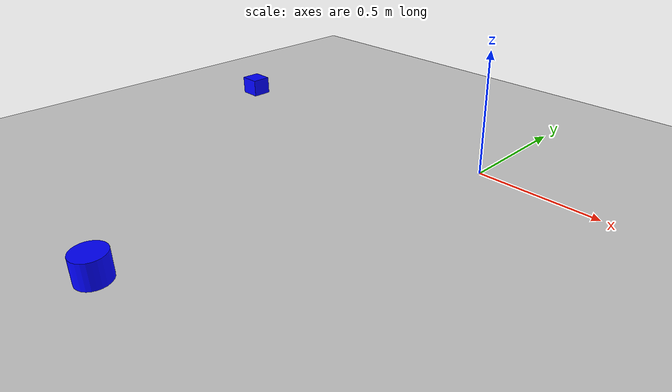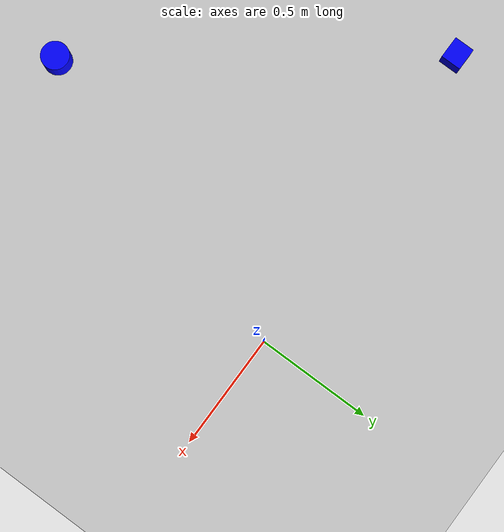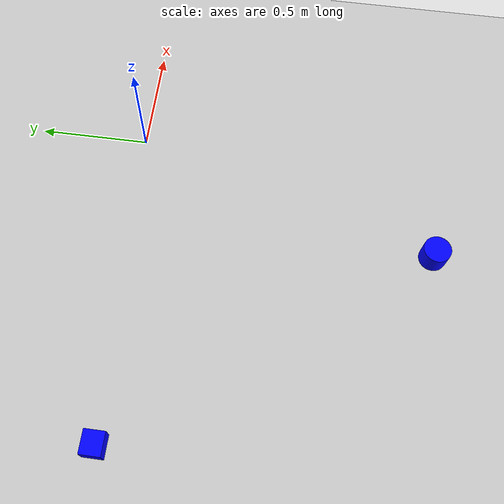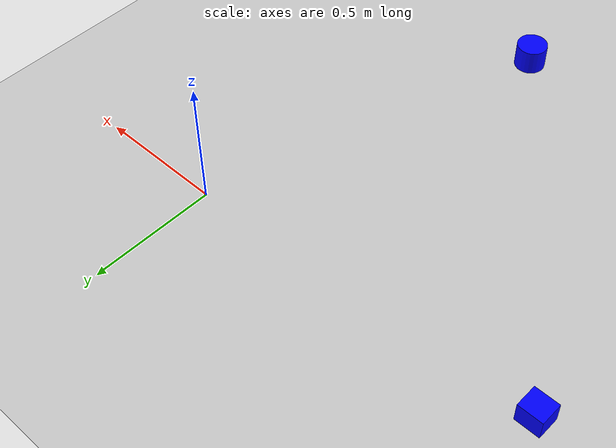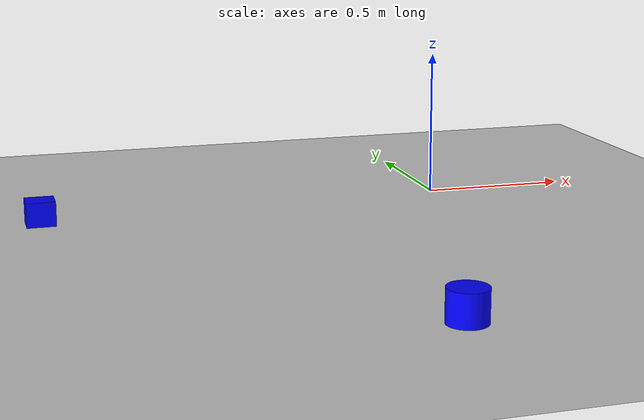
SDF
<?xml version="1.0" ?>
<sdf version="1.6">
  <world name="default">

    <!-- Light and environment -->
    <include>
      <uri>model://sun</uri>
    </include>

    <!-- Include your arena model (textured plane) -->
    <include>
      <uri>model://line_arena</uri>
      <pose>0 0 0 0 0 0</pose>
    </include>

    <!-- Box obstacle -->
   <include>
  <uri>model://box_obstacle</uri>
  <pose>-1.404677 -0.062031 0.037859 0 0 0</pose>
   </include>

<!-- Cylinder obstacle -->
   <include>
  <uri>model://cylinder_obstacle</uri>
  <pose>-0.422641 -1.365163 0.036766 0 0 0</pose>
   </include>

    <!-- Optional: ground plane (comment this out if arena replaces it) -->

  </world>
</sdf>

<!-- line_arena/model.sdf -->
<sdf version="1.6">
  <model name="line_arena">
    <static>true</static>
    <link name="ground">
      <visual name="visual">
        <geometry>
          <plane>
            <normal>0 0 1</normal>
            <size>5 5</size>
          </plane>
        </geometry>
        <material>
          <script>
            <uri>model://line_arena/materials/scripts</uri>
            <uri>model://line_arena/materials/textures</uri>
            <name>LineArena/Texture</name>
          </script>
        </material>
      </visual>
      <collision name="collision">
        <geometry>
          <plane>
            <normal>0 0 1</normal>
            <size>5 5</size>
          </plane>
        </geometry>
      </collision>
    </link>
  </model>
</sdf>

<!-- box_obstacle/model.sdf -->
<sdf version="1.6">
  <model name="box_obstacle">
    <pose>-1.404677 -0.062031 0.037859 0 0 0</pose>
    <link name="box_link">
      <inertial>
        <mass>1.0</mass>
        <inertia>
          <ixx>0.01</ixx>
          <ixy>0.0</ixy>
          <ixz>0.0</ixz>
          <iyy>0.01</iyy>
          <iyz>0.0</iyz>
          <izz>0.01</izz>
        </inertia>
      </inertial>
      <collision name="box_collision">
        <geometry>
          <box>
            <size>0.097209 0.088383 0.087003</size>
          </box>
        </geometry>
      </collision>
      <visual name="box_visual">
        <geometry>
          <box>
            <size>0.097209 0.088383 0.087003</size>
          </box>
        </geometry>
        <material>
          <ambient>0 0 1 1</ambient>
          <diffuse>0 0 1 1</diffuse>
        </material>
      </visual>
    </link>
    <static>true</static>
  </model>
</sdf>

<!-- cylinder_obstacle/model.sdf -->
<sdf version="1.6">
  <model name="cylinder_obstacle">
    <pose> -0.422641 -1.365163 0.036766 0 0 0 </pose>
    <link name="cylinder_link">
      <inertial>
        <mass>1.0</mass>
        <inertia>
          <ixx>0.01</ixx>
          <ixy>0.0</ixy>
          <ixz>0.0</ixz>
          <iyy>0.01</iyy>
          <iyz>0.0</iyz>
          <izz>0.01</izz>
        </inertia>
      </inertial>
      <collision name="cylinder_collision">
        <geometry>
          <cylinder>
            <radius>-0.06</radius>
            <length>-0.12</length>
          </cylinder>
        </geometry>
      </collision>
      <visual name="cylinder_visual">
        <geometry>
          <cylinder>
            <radius>0.06</radius>
            <length>0.12</length>
          </cylinder>
        </geometry>
        <material>
          <ambient>0 0 1 1</ambient>
          <diffuse>0 0 1 1</diffuse>
        </material>
      </visual>
    </link>
    <static>true</static>
  </model>
</sdf>
